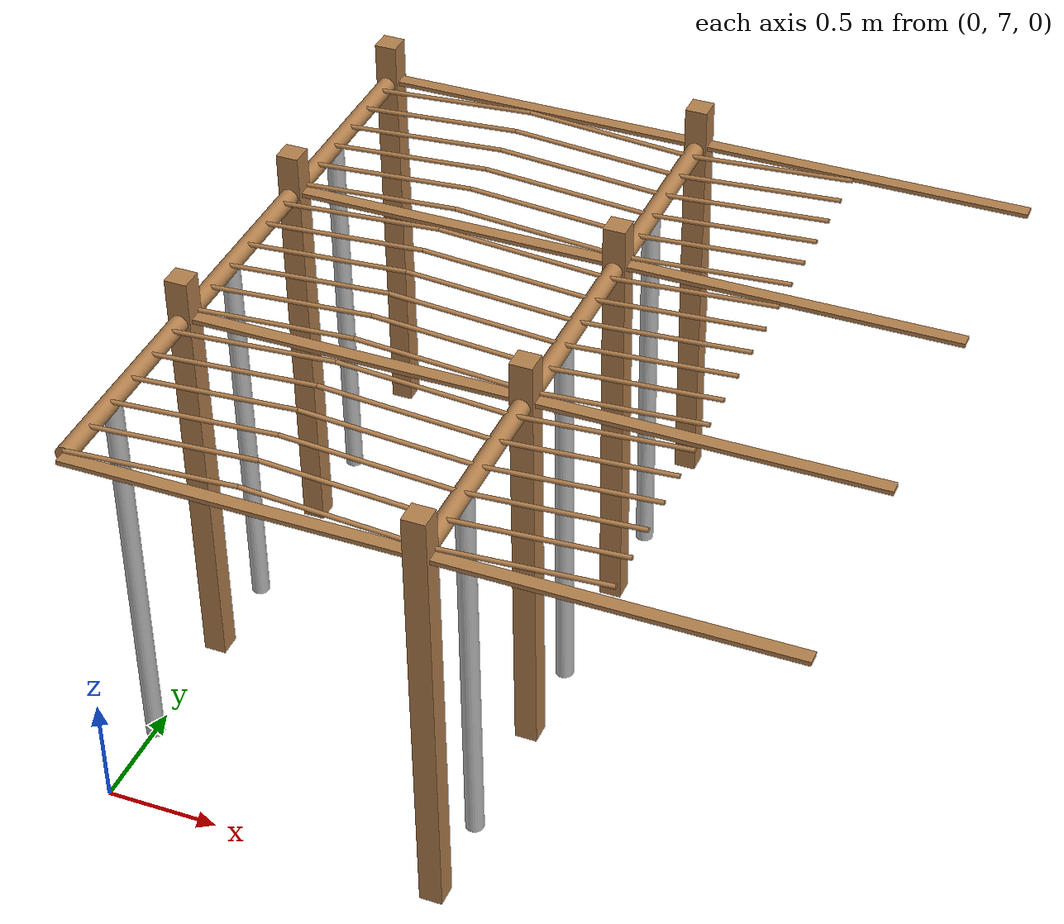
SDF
<sdf version="1.4">
 <model name="pergola">
  <include><name>post_8</name><pose>0.0 8.0 0 0 0 0</pose><uri>model://post</uri></include>
  <include><name>post_9</name><pose>0.0 9.0 0 0 0 0</pose><uri>model://post</uri></include>
  <include><name>post_10</name><pose>0.0 10.0 0 0 0 0</pose><uri>model://post</uri></include>
  <include><name>post_18</name><pose>1.5 7.0 0 0 0 0</pose><uri>model://post</uri></include>
  <include><name>post_19</name><pose>1.5 8.0 0 0 0 0</pose><uri>model://post</uri></include>
  <include><name>post_20</name><pose>1.5 9.0 0 0 0 0</pose><uri>model://post</uri></include>
  <include><name>post_21</name><pose>1.5 10.0 0 0 0 0</pose><uri>model://post</uri></include>
  <link name="beam_7">
   <pose>0.75 7.0 1.81 0 0 0</pose>
   <collision name="collision"><geometry><box><size>1.5 0.06 0.02</size></box></geometry></collision>
   <visual name="visual">
    <geometry><box><size>1.5 0.06 0.02</size></box></geometry>
    <material><script><name>Gazebo/Wood</name></script></material>
   </visual>
   <inertial>
    <mass>5</mass>
    <inertia>
     <ixx>0.0016666666666666668</ixx>
     <ixy>0.0</ixy>
     <ixz>0.0</ixz>
     <iyy>0.9390000000000001</iyy>
     <iyz>0.0</iyz>
     <izz>0.9376666666666665</izz>
    </inertia>
   </inertial>
  </link>
  <link name="beam_8">
   <pose>0.75 8.0 1.81 0 0 0</pose>
   <collision name="collision"><geometry><box><size>1.5 0.06 0.02</size></box></geometry></collision>
   <visual name="visual">
    <geometry><box><size>1.5 0.06 0.02</size></box></geometry>
    <material><script><name>Gazebo/Wood</name></script></material>
   </visual>
   <inertial>
    <mass>5</mass>
    <inertia>
     <ixx>0.0016666666666666668</ixx>
     <ixy>0.0</ixy>
     <ixz>0.0</ixz>
     <iyy>0.9390000000000001</iyy>
     <iyz>0.0</iyz>
     <izz>0.9376666666666665</izz>
    </inertia>
   </inertial>
  </link>
  <link name="beam_9">
   <pose>0.75 9.0 1.81 0 0 0</pose>
   <collision name="collision"><geometry><box><size>1.5 0.06 0.02</size></box></geometry></collision>
   <visual name="visual">
    <geometry><box><size>1.5 0.06 0.02</size></box></geometry>
    <material><script><name>Gazebo/Wood</name></script></material>
   </visual>
   <inertial>
    <mass>5</mass>
    <inertia>
     <ixx>0.0016666666666666668</ixx>
     <ixy>0.0</ixy>
     <ixz>0.0</ixz>
     <iyy>0.9390000000000001</iyy>
     <iyz>0.0</iyz>
     <izz>0.9376666666666665</izz>
    </inertia>
   </inertial>
  </link>
  <link name="beam_10">
   <pose>0.75 10.0 1.81 0 0 0</pose>
   <collision name="collision"><geometry><box><size>1.5 0.06 0.02</size></box></geometry></collision>
   <visual name="visual">
    <geometry><box><size>1.5 0.06 0.02</size></box></geometry>
    <material><script><name>Gazebo/Wood</name></script></material>
   </visual>
   <inertial>
    <mass>5</mass>
    <inertia>
     <ixx>0.0016666666666666668</ixx>
     <ixy>0.0</ixy>
     <ixz>0.0</ixz>
     <iyy>0.9390000000000001</iyy>
     <iyz>0.0</iyz>
     <izz>0.9376666666666665</izz>
    </inertia>
   </inertial>
  </link>
  <link name="beam_18">
   <pose>2.25 7.0 1.81 0 0 0</pose>
   <collision name="collision"><geometry><box><size>1.5 0.06 0.02</size></box></geometry></collision>
   <visual name="visual">
    <geometry><box><size>1.5 0.06 0.02</size></box></geometry>
    <material><script><name>Gazebo/Wood</name></script></material>
   </visual>
   <inertial>
    <mass>5</mass>
    <inertia>
     <ixx>0.0016666666666666668</ixx>
     <ixy>0.0</ixy>
     <ixz>0.0</ixz>
     <iyy>0.9390000000000001</iyy>
     <iyz>0.0</iyz>
     <izz>0.9376666666666665</izz>
    </inertia>
   </inertial>
  </link>
  <link name="beam_19">
   <pose>2.25 8.0 1.81 0 0 0</pose>
   <collision name="collision"><geometry><box><size>1.5 0.06 0.02</size></box></geometry></collision>
   <visual name="visual">
    <geometry><box><size>1.5 0.06 0.02</size></box></geometry>
    <material><script><name>Gazebo/Wood</name></script></material>
   </visual>
   <inertial>
    <mass>5</mass>
    <inertia>
     <ixx>0.0016666666666666668</ixx>
     <ixy>0.0</ixy>
     <ixz>0.0</ixz>
     <iyy>0.9390000000000001</iyy>
     <iyz>0.0</iyz>
     <izz>0.9376666666666665</izz>
    </inertia>
   </inertial>
  </link>
  <link name="beam_20">
   <pose>2.25 9.0 1.81 0 0 0</pose>
   <collision name="collision"><geometry><box><size>1.5 0.06 0.02</size></box></geometry></collision>
   <visual name="visual">
    <geometry><box><size>1.5 0.06 0.02</size></box></geometry>
    <material><script><name>Gazebo/Wood</name></script></material>
   </visual>
   <inertial>
    <mass>5</mass>
    <inertia>
     <ixx>0.0016666666666666668</ixx>
     <ixy>0.0</ixy>
     <ixz>0.0</ixz>
     <iyy>0.9390000000000001</iyy>
     <iyz>0.0</iyz>
     <izz>0.9376666666666665</izz>
    </inertia>
   </inertial>
  </link>
  <link name="beam_21">
   <pose>2.25 10.0 1.81 0 0 0</pose>
   <collision name="collision"><geometry><box><size>1.5 0.06 0.02</size></box></geometry></collision>
   <visual name="visual">
    <geometry><box><size>1.5 0.06 0.02</size></box></geometry>
    <material><script><name>Gazebo/Wood</name></script></material>
   </visual>
   <inertial>
    <mass>5</mass>
    <inertia>
     <ixx>0.0016666666666666668</ixx>
     <ixy>0.0</ixy>
     <ixz>0.0</ixz>
     <iyy>0.9390000000000001</iyy>
     <iyz>0.0</iyz>
     <izz>0.9376666666666665</izz>
    </inertia>
   </inertial>
  </link>
  <include><name>tree_7</name><pose>0.0 7.4 0 0 0 0</pose><uri>model://tree_trunk</uri></include>
  <include><name>tree_8</name><pose>0.0 8.4 0 0 0 0</pose><uri>model://tree_trunk</uri></include>
  <include><name>tree_9</name><pose>0.0 9.4 0 0 0 0</pose><uri>model://tree_trunk</uri></include>
  <include><name>tree_17</name><pose>1.5 7.4 0 0 0 0</pose><uri>model://tree_trunk</uri></include>
  <include><name>tree_18</name><pose>1.5 8.4 0 0 0 0</pose><uri>model://tree_trunk</uri></include>
  <include><name>tree_19</name><pose>1.5 9.4 0 0 0 0</pose><uri>model://tree_trunk</uri></include>
  <link name="baseBranch_7">
   <pose>0.0 7.5 1.8 1.5707963267948966 0 0</pose>
   <collision name="collision">
    <geometry><cylinder><radius>0.04</radius><length>0.94</length></cylinder></geometry>
   </collision>
   <visual name="visual">
    <geometry><cylinder><radius>0.04</radius><length>0.94</length></cylinder></geometry>
    <material><script><name>Gazebo/WoodFloor</name></script></material>
   </visual>
   <inertial>
    <mass>10</mass>
    <inertia>
     <ixx>0.7403333333333334</ixx>
     <ixy>0.0</ixy>
     <ixz>0.0</ixz>
     <iyy>0.7403333333333334</iyy>
     <iyz>0.0</iyz>
     <izz>0.008</izz>
    </inertia>
   </inertial>
  </link>
  <link name="baseBranch_8">
   <pose>0.0 8.5 1.8 1.5707963267948966 0 0</pose>
   <collision name="collision">
    <geometry><cylinder><radius>0.04</radius><length>0.94</length></cylinder></geometry>
   </collision>
   <visual name="visual">
    <geometry><cylinder><radius>0.04</radius><length>0.94</length></cylinder></geometry>
    <material><script><name>Gazebo/WoodFloor</name></script></material>
   </visual>
   <inertial>
    <mass>10</mass>
    <inertia>
     <ixx>0.7403333333333334</ixx>
     <ixy>0.0</ixy>
     <ixz>0.0</ixz>
     <iyy>0.7403333333333334</iyy>
     <iyz>0.0</iyz>
     <izz>0.008</izz>
    </inertia>
   </inertial>
  </link>
  <link name="baseBranch_9">
   <pose>0.0 9.5 1.8 1.5707963267948966 0 0</pose>
   <collision name="collision">
    <geometry><cylinder><radius>0.04</radius><length>0.94</length></cylinder></geometry>
   </collision>
   <visual name="visual">
    <geometry><cylinder><radius>0.04</radius><length>0.94</length></cylinder></geometry>
    <material><script><name>Gazebo/WoodFloor</name></script></material>
   </visual>
   <inertial>
    <mass>10</mass>
    <inertia>
     <ixx>0.7403333333333334</ixx>
     <ixy>0.0</ixy>
     <ixz>0.0</ixz>
     <iyy>0.7403333333333334</iyy>
     <iyz>0.0</iyz>
     <izz>0.008</izz>
    </inertia>
   </inertial>
  </link>
  <link name="baseBranch_17">
   <pose>1.5 7.5 1.8 1.5707963267948966 0 0</pose>
   <collision name="collision">
    <geometry><cylinder><radius>0.04</radius><length>0.94</length></cylinder></geometry>
   </collision>
   <visual name="visual">
    <geometry><cylinder><radius>0.04</radius><length>0.94</length></cylinder></geometry>
    <material><script><name>Gazebo/WoodFloor</name></script></material>
   </visual>
   <inertial>
    <mass>10</mass>
    <inertia>
     <ixx>0.7403333333333334</ixx>
     <ixy>0.0</ixy>
     <ixz>0.0</ixz>
     <iyy>0.7403333333333334</iyy>
     <iyz>0.0</iyz>
     <izz>0.008</izz>
    </inertia>
   </inertial>
  </link>
  <link name="baseBranch_18">
   <pose>1.5 8.5 1.8 1.5707963267948966 0 0</pose>
   <collision name="collision">
    <geometry><cylinder><radius>0.04</radius><length>0.94</length></cylinder></geometry>
   </collision>
   <visual name="visual">
    <geometry><cylinder><radius>0.04</radius><length>0.94</length></cylinder></geometry>
    <material><script><name>Gazebo/WoodFloor</name></script></material>
   </visual>
   <inertial>
    <mass>10</mass>
    <inertia>
     <ixx>0.7403333333333334</ixx>
     <ixy>0.0</ixy>
     <ixz>0.0</ixz>
     <iyy>0.7403333333333334</iyy>
     <iyz>0.0</iyz>
     <izz>0.008</izz>
    </inertia>
   </inertial>
  </link>
  <link name="baseBranch_19">
   <pose>1.5 9.5 1.8 1.5707963267948966 0 0</pose>
   <collision name="collision">
    <geometry><cylinder><radius>0.04</radius><length>0.94</length></cylinder></geometry>
   </collision>
   <visual name="visual">
    <geometry><cylinder><radius>0.04</radius><length>0.94</length></cylinder></geometry>
    <material><script><name>Gazebo/WoodFloor</name></script></material>
   </visual>
   <inertial>
    <mass>10</mass>
    <inertia>
     <ixx>0.7403333333333334</ixx>
     <ixy>0.0</ixy>
     <ixz>0.0</ixz>
     <iyy>0.7403333333333334</iyy>
     <iyz>0.0</iyz>
     <izz>0.008</izz>
    </inertia>
   </inertial>
  </link>
  <link name="vine_84">
   <pose>0.375 7.03 1.85 0 1.5042281630190728 0</pose>
   <collision name="collision">
    <geometry><cylinder><radius>0.01</radius><length>0.7516648189186453</length></cylinder></geometry>
   </collision>
   <visual name="visual">
    <geometry><cylinder><radius>0.01</radius><length>0.7516648189186453</length></cylinder></geometry>
    <material><script><name>Gazebo/WoodFloor</name></script></material>
   </visual>
   <inertial>
    <mass>5</mass>
    <inertia>
     <ixx>0.23554166666666657</ixx>
     <ixy>0.0</ixy>
     <ixz>0.0</ixz>
     <iyy>0.23554166666666657</iyy>
     <iyz>0.0</iyz>
     <izz>0.00025</izz>
    </inertia>
   </inertial>
  </link>
  <link name="vine_85">
   <pose>1.125 7.03 1.85 0 -1.5042281630190728 0</pose>
   <collision name="collision">
    <geometry><cylinder><radius>0.01</radius><length>0.7516648189186453</length></cylinder></geometry>
   </collision>
   <visual name="visual">
    <geometry><cylinder><radius>0.01</radius><length>0.7516648189186453</length></cylinder></geometry>
    <material><script><name>Gazebo/WoodFloor</name></script></material>
   </visual>
   <inertial>
    <mass>5</mass>
    <inertia>
     <ixx>0.23554166666666657</ixx>
     <ixy>0.0</ixy>
     <ixz>0.0</ixz>
     <iyy>0.23554166666666657</iyy>
     <iyz>0.0</iyz>
     <izz>0.00025</izz>
    </inertia>
   </inertial>
  </link>
  <link name="vine_86">
   <pose>0.375 7.196666666666666 1.85 0 1.5042281630190728 0</pose>
   <collision name="collision">
    <geometry><cylinder><radius>0.01</radius><length>0.7516648189186453</length></cylinder></geometry>
   </collision>
   <visual name="visual">
    <geometry><cylinder><radius>0.01</radius><length>0.7516648189186453</length></cylinder></geometry>
    <material><script><name>Gazebo/WoodFloor</name></script></material>
   </visual>
   <inertial>
    <mass>5</mass>
    <inertia>
     <ixx>0.23554166666666657</ixx>
     <ixy>0.0</ixy>
     <ixz>0.0</ixz>
     <iyy>0.23554166666666657</iyy>
     <iyz>0.0</iyz>
     <izz>0.00025</izz>
    </inertia>
   </inertial>
  </link>
  <link name="vine_87">
   <pose>1.125 7.196666666666666 1.85 0 -1.5042281630190728 0</pose>
   <collision name="collision">
    <geometry><cylinder><radius>0.01</radius><length>0.7516648189186453</length></cylinder></geometry>
   </collision>
   <visual name="visual">
    <geometry><cylinder><radius>0.01</radius><length>0.7516648189186453</length></cylinder></geometry>
    <material><script><name>Gazebo/WoodFloor</name></script></material>
   </visual>
   <inertial>
    <mass>5</mass>
    <inertia>
     <ixx>0.23554166666666657</ixx>
     <ixy>0.0</ixy>
     <ixz>0.0</ixz>
     <iyy>0.23554166666666657</iyy>
     <iyz>0.0</iyz>
     <izz>0.00025</izz>
    </inertia>
   </inertial>
  </link>
  <link name="vine_88">
   <pose>0.375 7.363333333333333 1.85 0 1.5042281630190728 0</pose>
   <collision name="collision">
    <geometry><cylinder><radius>0.01</radius><length>0.7516648189186453</length></cylinder></geometry>
   </collision>
   <visual name="visual">
    <geometry><cylinder><radius>0.01</radius><length>0.7516648189186453</length></cylinder></geometry>
    <material><script><name>Gazebo/WoodFloor</name></script></material>
   </visual>
   <inertial>
    <mass>5</mass>
    <inertia>
     <ixx>0.23554166666666657</ixx>
     <ixy>0.0</ixy>
     <ixz>0.0</ixz>
     <iyy>0.23554166666666657</iyy>
     <iyz>0.0</iyz>
     <izz>0.00025</izz>
    </inertia>
   </inertial>
  </link>
  <link name="vine_89">
   <pose>1.125 7.363333333333333 1.85 0 -1.5042281630190728 0</pose>
   <collision name="collision">
    <geometry><cylinder><radius>0.01</radius><length>0.7516648189186453</length></cylinder></geometry>
   </collision>
   <visual name="visual">
    <geometry><cylinder><radius>0.01</radius><length>0.7516648189186453</length></cylinder></geometry>
    <material><script><name>Gazebo/WoodFloor</name></script></material>
   </visual>
   <inertial>
    <mass>5</mass>
    <inertia>
     <ixx>0.23554166666666657</ixx>
     <ixy>0.0</ixy>
     <ixz>0.0</ixz>
     <iyy>0.23554166666666657</iyy>
     <iyz>0.0</iyz>
     <izz>0.00025</izz>
    </inertia>
   </inertial>
  </link>
  <link name="vine_90">
   <pose>0.375 7.53 1.85 0 1.5042281630190728 0</pose>
   <collision name="collision">
    <geometry><cylinder><radius>0.01</radius><length>0.7516648189186453</length></cylinder></geometry>
   </collision>
   <visual name="visual">
    <geometry><cylinder><radius>0.01</radius><length>0.7516648189186453</length></cylinder></geometry>
    <material><script><name>Gazebo/WoodFloor</name></script></material>
   </visual>
   <inertial>
    <mass>5</mass>
    <inertia>
     <ixx>0.23554166666666657</ixx>
     <ixy>0.0</ixy>
     <ixz>0.0</ixz>
     <iyy>0.23554166666666657</iyy>
     <iyz>0.0</iyz>
     <izz>0.00025</izz>
    </inertia>
   </inertial>
  </link>
  <link name="vine_91">
   <pose>1.125 7.53 1.85 0 -1.5042281630190728 0</pose>
   <collision name="collision">
    <geometry><cylinder><radius>0.01</radius><length>0.7516648189186453</length></cylinder></geometry>
   </collision>
   <visual name="visual">
    <geometry><cylinder><radius>0.01</radius><length>0.7516648189186453</length></cylinder></geometry>
    <material><script><name>Gazebo/WoodFloor</name></script></material>
   </visual>
   <inertial>
    <mass>5</mass>
    <inertia>
     <ixx>0.23554166666666657</ixx>
     <ixy>0.0</ixy>
     <ixz>0.0</ixz>
     <iyy>0.23554166666666657</iyy>
     <iyz>0.0</iyz>
     <izz>0.00025</izz>
    </inertia>
   </inertial>
  </link>
  <link name="vine_92">
   <pose>0.375 7.696666666666666 1.85 0 1.5042281630190728 0</pose>
   <collision name="collision">
    <geometry><cylinder><radius>0.01</radius><length>0.7516648189186453</length></cylinder></geometry>
   </collision>
   <visual name="visual">
    <geometry><cylinder><radius>0.01</radius><length>0.7516648189186453</length></cylinder></geometry>
    <material><script><name>Gazebo/WoodFloor</name></script></material>
   </visual>
   <inertial>
    <mass>5</mass>
    <inertia>
     <ixx>0.23554166666666657</ixx>
     <ixy>0.0</ixy>
     <ixz>0.0</ixz>
     <iyy>0.23554166666666657</iyy>
     <iyz>0.0</iyz>
     <izz>0.00025</izz>
    </inertia>
   </inertial>
  </link>
  <link name="vine_93">
   <pose>1.125 7.696666666666666 1.85 0 -1.5042281630190728 0</pose>
   <collision name="collision">
    <geometry><cylinder><radius>0.01</radius><length>0.7516648189186453</length></cylinder></geometry>
   </collision>
   <visual name="visual">
    <geometry><cylinder><radius>0.01</radius><length>0.7516648189186453</length></cylinder></geometry>
    <material><script><name>Gazebo/WoodFloor</name></script></material>
   </visual>
   <inertial>
    <mass>5</mass>
    <inertia>
     <ixx>0.23554166666666657</ixx>
     <ixy>0.0</ixy>
     <ixz>0.0</ixz>
     <iyy>0.23554166666666657</iyy>
     <iyz>0.0</iyz>
     <izz>0.00025</izz>
    </inertia>
   </inertial>
  </link>
  <link name="vine_94">
   <pose>0.375 7.863333333333333 1.85 0 1.5042281630190728 0</pose>
   <collision name="collision">
    <geometry><cylinder><radius>0.01</radius><length>0.7516648189186453</length></cylinder></geometry>
   </collision>
   <visual name="visual">
    <geometry><cylinder><radius>0.01</radius><length>0.7516648189186453</length></cylinder></geometry>
    <material><script><name>Gazebo/WoodFloor</name></script></material>
   </visual>
   <inertial>
    <mass>5</mass>
    <inertia>
     <ixx>0.23554166666666657</ixx>
     <ixy>0.0</ixy>
     <ixz>0.0</ixz>
     <iyy>0.23554166666666657</iyy>
     <iyz>0.0</iyz>
     <izz>0.00025</izz>
    </inertia>
   </inertial>
  </link>
  <link name="vine_95">
   <pose>1.125 7.863333333333333 1.85 0 -1.5042281630190728 0</pose>
   <collision name="collision">
    <geometry><cylinder><radius>0.01</radius><length>0.7516648189186453</length></cylinder></geometry>
   </collision>
   <visual name="visual">
    <geometry><cylinder><radius>0.01</radius><length>0.7516648189186453</length></cylinder></geometry>
    <material><script><name>Gazebo/WoodFloor</name></script></material>
   </visual>
   <inertial>
    <mass>5</mass>
    <inertia>
     <ixx>0.23554166666666657</ixx>
     <ixy>0.0</ixy>
     <ixz>0.0</ixz>
     <iyy>0.23554166666666657</iyy>
     <iyz>0.0</iyz>
     <izz>0.00025</izz>
    </inertia>
   </inertial>
  </link>
  <link name="vine_96">
   <pose>0.375 8.03 1.85 0 1.5042281630190728 0</pose>
   <collision name="collision">
    <geometry><cylinder><radius>0.01</radius><length>0.7516648189186453</length></cylinder></geometry>
   </collision>
   <visual name="visual">
    <geometry><cylinder><radius>0.01</radius><length>0.7516648189186453</length></cylinder></geometry>
    <material><script><name>Gazebo/WoodFloor</name></script></material>
   </visual>
   <inertial>
    <mass>5</mass>
    <inertia>
     <ixx>0.23554166666666657</ixx>
     <ixy>0.0</ixy>
     <ixz>0.0</ixz>
     <iyy>0.23554166666666657</iyy>
     <iyz>0.0</iyz>
     <izz>0.00025</izz>
    </inertia>
   </inertial>
  </link>
  <link name="vine_97">
   <pose>1.125 8.03 1.85 0 -1.5042281630190728 0</pose>
   <collision name="collision">
    <geometry><cylinder><radius>0.01</radius><length>0.7516648189186453</length></cylinder></geometry>
   </collision>
   <visual name="visual">
    <geometry><cylinder><radius>0.01</radius><length>0.7516648189186453</length></cylinder></geometry>
    <material><script><name>Gazebo/WoodFloor</name></script></material>
   </visual>
   <inertial>
    <mass>5</mass>
    <inertia>
     <ixx>0.23554166666666657</ixx>
     <ixy>0.0</ixy>
     <ixz>0.0</ixz>
     <iyy>0.23554166666666657</iyy>
     <iyz>0.0</iyz>
     <izz>0.00025</izz>
    </inertia>
   </inertial>
  </link>
  <link name="vine_98">
   <pose>0.375 8.196666666666665 1.85 0 1.5042281630190728 0</pose>
   <collision name="collision">
    <geometry><cylinder><radius>0.01</radius><length>0.7516648189186453</length></cylinder></geometry>
   </collision>
   <visual name="visual">
    <geometry><cylinder><radius>0.01</radius><length>0.7516648189186453</length></cylinder></geometry>
    <material><script><name>Gazebo/WoodFloor</name></script></material>
   </visual>
   <inertial>
    <mass>5</mass>
    <inertia>
     <ixx>0.23554166666666657</ixx>
     <ixy>0.0</ixy>
     <ixz>0.0</ixz>
     <iyy>0.23554166666666657</iyy>
     <iyz>0.0</iyz>
     <izz>0.00025</izz>
    </inertia>
   </inertial>
  </link>
  <link name="vine_99">
   <pose>1.125 8.196666666666665 1.85 0 -1.5042281630190728 0</pose>
   <collision name="collision">
    <geometry><cylinder><radius>0.01</radius><length>0.7516648189186453</length></cylinder></geometry>
   </collision>
   <visual name="visual">
    <geometry><cylinder><radius>0.01</radius><length>0.7516648189186453</length></cylinder></geometry>
    <material><script><name>Gazebo/WoodFloor</name></script></material>
   </visual>
   <inertial>
    <mass>5</mass>
    <inertia>
     <ixx>0.23554166666666657</ixx>
     <ixy>0.0</ixy>
     <ixz>0.0</ixz>
     <iyy>0.23554166666666657</iyy>
     <iyz>0.0</iyz>
     <izz>0.00025</izz>
    </inertia>
   </inertial>
  </link>
  <link name="vine_100">
   <pose>0.375 8.363333333333332 1.85 0 1.5042281630190728 0</pose>
   <collision name="collision">
    <geometry><cylinder><radius>0.01</radius><length>0.7516648189186453</length></cylinder></geometry>
   </collision>
   <visual name="visual">
    <geometry><cylinder><radius>0.01</radius><length>0.7516648189186453</length></cylinder></geometry>
    <material><script><name>Gazebo/WoodFloor</name></script></material>
   </visual>
   <inertial>
    <mass>5</mass>
    <inertia>
     <ixx>0.23554166666666657</ixx>
     <ixy>0.0</ixy>
     <ixz>0.0</ixz>
     <iyy>0.23554166666666657</iyy>
     <iyz>0.0</iyz>
     <izz>0.00025</izz>
    </inertia>
   </inertial>
  </link>
  <link name="vine_101">
   <pose>1.125 8.363333333333332 1.85 0 -1.5042281630190728 0</pose>
   <collision name="collision">
    <geometry><cylinder><radius>0.01</radius><length>0.7516648189186453</length></cylinder></geometry>
   </collision>
   <visual name="visual">
    <geometry><cylinder><radius>0.01</radius><length>0.7516648189186453</length></cylinder></geometry>
    <material><script><name>Gazebo/WoodFloor</name></script></material>
   </visual>
   <inertial>
    <mass>5</mass>
    <inertia>
     <ixx>0.23554166666666657</ixx>
     <ixy>0.0</ixy>
     <ixz>0.0</ixz>
     <iyy>0.23554166666666657</iyy>
     <iyz>0.0</iyz>
     <izz>0.00025</izz>
    </inertia>
   </inertial>
  </link>
  <link name="vine_102">
   <pose>0.375 8.53 1.85 0 1.5042281630190728 0</pose>
   <collision name="collision">
    <geometry><cylinder><radius>0.01</radius><length>0.7516648189186453</length></cylinder></geometry>
   </collision>
   <visual name="visual">
    <geometry><cylinder><radius>0.01</radius><length>0.7516648189186453</length></cylinder></geometry>
    <material><script><name>Gazebo/WoodFloor</name></script></material>
   </visual>
   <inertial>
    <mass>5</mass>
    <inertia>
     <ixx>0.23554166666666657</ixx>
     <ixy>0.0</ixy>
     <ixz>0.0</ixz>
     <iyy>0.23554166666666657</iyy>
     <iyz>0.0</iyz>
     <izz>0.00025</izz>
    </inertia>
   </inertial>
  </link>
  <link name="vine_103">
   <pose>1.125 8.53 1.85 0 -1.5042281630190728 0</pose>
   <collision name="collision">
    <geometry><cylinder><radius>0.01</radius><length>0.7516648189186453</length></cylinder></geometry>
   </collision>
   <visual name="visual">
    <geometry><cylinder><radius>0.01</radius><length>0.7516648189186453</length></cylinder></geometry>
    <material><script><name>Gazebo/WoodFloor</name></script></material>
   </visual>
   <inertial>
    <mass>5</mass>
    <inertia>
     <ixx>0.23554166666666657</ixx>
     <ixy>0.0</ixy>
     <ixz>0.0</ixz>
     <iyy>0.23554166666666657</iyy>
     <iyz>0.0</iyz>
     <izz>0.00025</izz>
    </inertia>
   </inertial>
  </link>
  <link name="vine_104">
   <pose>0.375 8.696666666666665 1.85 0 1.5042281630190728 0</pose>
   <collision name="collision">
    <geometry><cylinder><radius>0.01</radius><length>0.7516648189186453</length></cylinder></geometry>
   </collision>
   <visual name="visual">
    <geometry><cylinder><radius>0.01</radius><length>0.7516648189186453</length></cylinder></geometry>
    <material><script><name>Gazebo/WoodFloor</name></script></material>
   </visual>
   <inertial>
    <mass>5</mass>
    <inertia>
     <ixx>0.23554166666666657</ixx>
     <ixy>0.0</ixy>
     <ixz>0.0</ixz>
     <iyy>0.23554166666666657</iyy>
     <iyz>0.0</iyz>
     <izz>0.00025</izz>
    </inertia>
   </inertial>
  </link>
  <link name="vine_105">
   <pose>1.125 8.696666666666665 1.85 0 -1.5042281630190728 0</pose>
   <collision name="collision">
    <geometry><cylinder><radius>0.01</radius><length>0.7516648189186453</length></cylinder></geometry>
   </collision>
   <visual name="visual">
    <geometry><cylinder><radius>0.01</radius><length>0.7516648189186453</length></cylinder></geometry>
    <material><script><name>Gazebo/WoodFloor</name></script></material>
   </visual>
   <inertial>
    <mass>5</mass>
    <inertia>
     <ixx>0.23554166666666657</ixx>
     <ixy>0.0</ixy>
     <ixz>0.0</ixz>
     <iyy>0.23554166666666657</iyy>
     <iyz>0.0</iyz>
     <izz>0.00025</izz>
    </inertia>
   </inertial>
  </link>
  <link name="vine_106">
   <pose>0.375 8.863333333333332 1.85 0 1.5042281630190728 0</pose>
   <collision name="collision">
    <geometry><cylinder><radius>0.01</radius><length>0.7516648189186453</length></cylinder></geometry>
   </collision>
   <visual name="visual">
    <geometry><cylinder><radius>0.01</radius><length>0.7516648189186453</length></cylinder></geometry>
    <material><script><name>Gazebo/WoodFloor</name></script></material>
   </visual>
   <inertial>
    <mass>5</mass>
    <inertia>
     <ixx>0.23554166666666657</ixx>
     <ixy>0.0</ixy>
     <ixz>0.0</ixz>
     <iyy>0.23554166666666657</iyy>
     <iyz>0.0</iyz>
     <izz>0.00025</izz>
    </inertia>
   </inertial>
  </link>
  <link name="vine_107">
   <pose>1.125 8.863333333333332 1.85 0 -1.5042281630190728 0</pose>
   <collision name="collision">
    <geometry><cylinder><radius>0.01</radius><length>0.7516648189186453</length></cylinder></geometry>
   </collision>
   <visual name="visual">
    <geometry><cylinder><radius>0.01</radius><length>0.7516648189186453</length></cylinder></geometry>
    <material><script><name>Gazebo/WoodFloor</name></script></material>
   </visual>
   <inertial>
    <mass>5</mass>
    <inertia>
     <ixx>0.23554166666666657</ixx>
     <ixy>0.0</ixy>
     <ixz>0.0</ixz>
     <iyy>0.23554166666666657</iyy>
     <iyz>0.0</iyz>
     <izz>0.00025</izz>
    </inertia>
   </inertial>
  </link>
  <link name="vine_108">
   <pose>0.375 9.03 1.85 0 1.5042281630190728 0</pose>
   <collision name="collision">
    <geometry><cylinder><radius>0.01</radius><length>0.7516648189186453</length></cylinder></geometry>
   </collision>
   <visual name="visual">
    <geometry><cylinder><radius>0.01</radius><length>0.7516648189186453</length></cylinder></geometry>
    <material><script><name>Gazebo/WoodFloor</name></script></material>
   </visual>
   <inertial>
    <mass>5</mass>
    <inertia>
     <ixx>0.23554166666666657</ixx>
     <ixy>0.0</ixy>
     <ixz>0.0</ixz>
     <iyy>0.23554166666666657</iyy>
     <iyz>0.0</iyz>
     <izz>0.00025</izz>
    </inertia>
   </inertial>
  </link>
  <link name="vine_109">
   <pose>1.125 9.03 1.85 0 -1.5042281630190728 0</pose>
   <collision name="collision">
    <geometry><cylinder><radius>0.01</radius><length>0.7516648189186453</length></cylinder></geometry>
   </collision>
   <visual name="visual">
    <geometry><cylinder><radius>0.01</radius><length>0.7516648189186453</length></cylinder></geometry>
    <material><script><name>Gazebo/WoodFloor</name></script></material>
   </visual>
   <inertial>
    <mass>5</mass>
    <inertia>
     <ixx>0.23554166666666657</ixx>
     <ixy>0.0</ixy>
     <ixz>0.0</ixz>
     <iyy>0.23554166666666657</iyy>
     <iyz>0.0</iyz>
     <izz>0.00025</izz>
    </inertia>
   </inertial>
  </link>
  <link name="vine_110">
   <pose>0.375 9.196666666666665 1.85 0 1.5042281630190728 0</pose>
   <collision name="collision">
    <geometry><cylinder><radius>0.01</radius><length>0.7516648189186453</length></cylinder></geometry>
   </collision>
   <visual name="visual">
    <geometry><cylinder><radius>0.01</radius><length>0.7516648189186453</length></cylinder></geometry>
    <material><script><name>Gazebo/WoodFloor</name></script></material>
   </visual>
   <inertial>
    <mass>5</mass>
    <inertia>
     <ixx>0.23554166666666657</ixx>
     <ixy>0.0</ixy>
     <ixz>0.0</ixz>
     <iyy>0.23554166666666657</iyy>
     <iyz>0.0</iyz>
     <izz>0.00025</izz>
    </inertia>
   </inertial>
  </link>
  <link name="vine_111">
   <pose>1.125 9.196666666666665 1.85 0 -1.5042281630190728 0</pose>
   <collision name="collision">
    <geometry><cylinder><radius>0.01</radius><length>0.7516648189186453</length></cylinder></geometry>
   </collision>
   <visual name="visual">
    <geometry><cylinder><radius>0.01</radius><length>0.7516648189186453</length></cylinder></geometry>
    <material><script><name>Gazebo/WoodFloor</name></script></material>
   </visual>
   <inertial>
    <mass>5</mass>
    <inertia>
     <ixx>0.23554166666666657</ixx>
     <ixy>0.0</ixy>
     <ixz>0.0</ixz>
     <iyy>0.23554166666666657</iyy>
     <iyz>0.0</iyz>
     <izz>0.00025</izz>
    </inertia>
   </inertial>
  </link>
  <link name="vine_112">
   <pose>0.375 9.363333333333332 1.85 0 1.5042281630190728 0</pose>
   <collision name="collision">
    <geometry><cylinder><radius>0.01</radius><length>0.7516648189186453</length></cylinder></geometry>
   </collision>
   <visual name="visual">
    <geometry><cylinder><radius>0.01</radius><length>0.7516648189186453</length></cylinder></geometry>
    <material><script><name>Gazebo/WoodFloor</name></script></material>
   </visual>
   <inertial>
    <mass>5</mass>
    <inertia>
     <ixx>0.23554166666666657</ixx>
     <ixy>0.0</ixy>
     <ixz>0.0</ixz>
     <iyy>0.23554166666666657</iyy>
     <iyz>0.0</iyz>
     <izz>0.00025</izz>
    </inertia>
   </inertial>
  </link>
  <link name="vine_113">
   <pose>1.125 9.363333333333332 1.85 0 -1.5042281630190728 0</pose>
   <collision name="collision">
    <geometry><cylinder><radius>0.01</radius><length>0.7516648189186453</length></cylinder></geometry>
   </collision>
   <visual name="visual">
    <geometry><cylinder><radius>0.01</radius><length>0.7516648189186453</length></cylinder></geometry>
    <material><script><name>Gazebo/WoodFloor</name></script></material>
   </visual>
   <inertial>
    <mass>5</mass>
    <inertia>
     <ixx>0.23554166666666657</ixx>
     <ixy>0.0</ixy>
     <ixz>0.0</ixz>
     <iyy>0.23554166666666657</iyy>
     <iyz>0.0</iyz>
     <izz>0.00025</izz>
    </inertia>
   </inertial>
  </link>
  <link name="vine_114">
   <pose>0.375 9.53 1.85 0 1.5042281630190728 0</pose>
   <collision name="collision">
    <geometry><cylinder><radius>0.01</radius><length>0.7516648189186453</length></cylinder></geometry>
   </collision>
   <visual name="visual">
    <geometry><cylinder><radius>0.01</radius><length>0.7516648189186453</length></cylinder></geometry>
    <material><script><name>Gazebo/WoodFloor</name></script></material>
   </visual>
   <inertial>
    <mass>5</mass>
    <inertia>
     <ixx>0.23554166666666657</ixx>
     <ixy>0.0</ixy>
     <ixz>0.0</ixz>
     <iyy>0.23554166666666657</iyy>
     <iyz>0.0</iyz>
     <izz>0.00025</izz>
    </inertia>
   </inertial>
  </link>
  <link name="vine_115">
   <pose>1.125 9.53 1.85 0 -1.5042281630190728 0</pose>
   <collision name="collision">
    <geometry><cylinder><radius>0.01</radius><length>0.7516648189186453</length></cylinder></geometry>
   </collision>
   <visual name="visual">
    <geometry><cylinder><radius>0.01</radius><length>0.7516648189186453</length></cylinder></geometry>
    <material><script><name>Gazebo/WoodFloor</name></script></material>
   </visual>
   <inertial>
    <mass>5</mass>
    <inertia>
     <ixx>0.23554166666666657</ixx>
     <ixy>0.0</ixy>
     <ixz>0.0</ixz>
     <iyy>0.23554166666666657</iyy>
     <iyz>0.0</iyz>
     <izz>0.00025</izz>
    </inertia>
   </inertial>
  </link>
  <link name="vine_116">
   <pose>0.375 9.696666666666665 1.85 0 1.5042281630190728 0</pose>
   <collision name="collision">
    <geometry><cylinder><radius>0.01</radius><length>0.7516648189186453</length></cylinder></geometry>
   </collision>
   <visual name="visual">
    <geometry><cylinder><radius>0.01</radius><length>0.7516648189186453</length></cylinder></geometry>
    <material><script><name>Gazebo/WoodFloor</name></script></material>
   </visual>
   <inertial>
    <mass>5</mass>
    <inertia>
     <ixx>0.23554166666666657</ixx>
     <ixy>0.0</ixy>
     <ixz>0.0</ixz>
     <iyy>0.23554166666666657</iyy>
     <iyz>0.0</iyz>
     <izz>0.00025</izz>
    </inertia>
   </inertial>
  </link>
  <link name="vine_117">
   <pose>1.125 9.696666666666665 1.85 0 -1.5042281630190728 0</pose>
   <collision name="collision">
    <geometry><cylinder><radius>0.01</radius><length>0.7516648189186453</length></cylinder></geometry>
   </collision>
   <visual name="visual">
    <geometry><cylinder><radius>0.01</radius><length>0.7516648189186453</length></cylinder></geometry>
    <material><script><name>Gazebo/WoodFloor</name></script></material>
   </visual>
   <inertial>
    <mass>5</mass>
    <inertia>
     <ixx>0.23554166666666657</ixx>
     <ixy>0.0</ixy>
     <ixz>0.0</ixz>
     <iyy>0.23554166666666657</iyy>
     <iyz>0.0</iyz>
     <izz>0.00025</izz>
    </inertia>
   </inertial>
  </link>
  <link name="vine_118">
   <pose>0.375 9.863333333333332 1.85 0 1.5042281630190728 0</pose>
   <collision name="collision">
    <geometry><cylinder><radius>0.01</radius><length>0.7516648189186453</length></cylinder></geometry>
   </collision>
   <visual name="visual">
    <geometry><cylinder><radius>0.01</radius><length>0.7516648189186453</length></cylinder></geometry>
    <material><script><name>Gazebo/WoodFloor</name></script></material>
   </visual>
   <inertial>
    <mass>5</mass>
    <inertia>
     <ixx>0.23554166666666657</ixx>
     <ixy>0.0</ixy>
     <ixz>0.0</ixz>
     <iyy>0.23554166666666657</iyy>
     <iyz>0.0</iyz>
     <izz>0.00025</izz>
    </inertia>
   </inertial>
  </link>
  <link name="vine_119">
   <pose>1.125 9.863333333333332 1.85 0 -1.5042281630190728 0</pose>
   <collision name="collision">
    <geometry><cylinder><radius>0.01</radius><length>0.7516648189186453</length></cylinder></geometry>
   </collision>
   <visual name="visual">
    <geometry><cylinder><radius>0.01</radius><length>0.7516648189186453</length></cylinder></geometry>
    <material><script><name>Gazebo/WoodFloor</name></script></material>
   </visual>
   <inertial>
    <mass>5</mass>
    <inertia>
     <ixx>0.23554166666666657</ixx>
     <ixy>0.0</ixy>
     <ixz>0.0</ixz>
     <iyy>0.23554166666666657</iyy>
     <iyz>0.0</iyz>
     <izz>0.00025</izz>
    </inertia>
   </inertial>
  </link>
  <link name="vine_204">
   <pose>1.875 7.03 1.85 0 1.5042281630190728 0</pose>
   <collision name="collision">
    <geometry><cylinder><radius>0.01</radius><length>0.7516648189186453</length></cylinder></geometry>
   </collision>
   <visual name="visual">
    <geometry><cylinder><radius>0.01</radius><length>0.7516648189186453</length></cylinder></geometry>
    <material><script><name>Gazebo/WoodFloor</name></script></material>
   </visual>
   <inertial>
    <mass>5</mass>
    <inertia>
     <ixx>0.23554166666666657</ixx>
     <ixy>0.0</ixy>
     <ixz>0.0</ixz>
     <iyy>0.23554166666666657</iyy>
     <iyz>0.0</iyz>
     <izz>0.00025</izz>
    </inertia>
   </inertial>
  </link>
  <link name="vine_206">
   <pose>1.875 7.196666666666666 1.85 0 1.5042281630190728 0</pose>
   <collision name="collision">
    <geometry><cylinder><radius>0.01</radius><length>0.7516648189186453</length></cylinder></geometry>
   </collision>
   <visual name="visual">
    <geometry><cylinder><radius>0.01</radius><length>0.7516648189186453</length></cylinder></geometry>
    <material><script><name>Gazebo/WoodFloor</name></script></material>
   </visual>
   <inertial>
    <mass>5</mass>
    <inertia>
     <ixx>0.23554166666666657</ixx>
     <ixy>0.0</ixy>
     <ixz>0.0</ixz>
     <iyy>0.23554166666666657</iyy>
     <iyz>0.0</iyz>
     <izz>0.00025</izz>
    </inertia>
   </inertial>
  </link>
  <link name="vine_208">
   <pose>1.875 7.363333333333333 1.85 0 1.5042281630190728 0</pose>
   <collision name="collision">
    <geometry><cylinder><radius>0.01</radius><length>0.7516648189186453</length></cylinder></geometry>
   </collision>
   <visual name="visual">
    <geometry><cylinder><radius>0.01</radius><length>0.7516648189186453</length></cylinder></geometry>
    <material><script><name>Gazebo/WoodFloor</name></script></material>
   </visual>
   <inertial>
    <mass>5</mass>
    <inertia>
     <ixx>0.23554166666666657</ixx>
     <ixy>0.0</ixy>
     <ixz>0.0</ixz>
     <iyy>0.23554166666666657</iyy>
     <iyz>0.0</iyz>
     <izz>0.00025</izz>
    </inertia>
   </inertial>
  </link>
  <link name="vine_210">
   <pose>1.875 7.53 1.85 0 1.5042281630190728 0</pose>
   <collision name="collision">
    <geometry><cylinder><radius>0.01</radius><length>0.7516648189186453</length></cylinder></geometry>
   </collision>
   <visual name="visual">
    <geometry><cylinder><radius>0.01</radius><length>0.7516648189186453</length></cylinder></geometry>
    <material><script><name>Gazebo/WoodFloor</name></script></material>
   </visual>
   <inertial>
    <mass>5</mass>
    <inertia>
     <ixx>0.23554166666666657</ixx>
     <ixy>0.0</ixy>
     <ixz>0.0</ixz>
     <iyy>0.23554166666666657</iyy>
     <iyz>0.0</iyz>
     <izz>0.00025</izz>
    </inertia>
   </inertial>
  </link>
  <link name="vine_212">
   <pose>1.875 7.696666666666666 1.85 0 1.5042281630190728 0</pose>
   <collision name="collision">
    <geometry><cylinder><radius>0.01</radius><length>0.7516648189186453</length></cylinder></geometry>
   </collision>
   <visual name="visual">
    <geometry><cylinder><radius>0.01</radius><length>0.7516648189186453</length></cylinder></geometry>
    <material><script><name>Gazebo/WoodFloor</name></script></material>
   </visual>
   <inertial>
    <mass>5</mass>
    <inertia>
     <ixx>0.23554166666666657</ixx>
     <ixy>0.0</ixy>
     <ixz>0.0</ixz>
     <iyy>0.23554166666666657</iyy>
     <iyz>0.0</iyz>
     <izz>0.00025</izz>
    </inertia>
   </inertial>
  </link>
  <link name="vine_214">
   <pose>1.875 7.863333333333333 1.85 0 1.5042281630190728 0</pose>
   <collision name="collision">
    <geometry><cylinder><radius>0.01</radius><length>0.7516648189186453</length></cylinder></geometry>
   </collision>
   <visual name="visual">
    <geometry><cylinder><radius>0.01</radius><length>0.7516648189186453</length></cylinder></geometry>
    <material><script><name>Gazebo/WoodFloor</name></script></material>
   </visual>
   <inertial>
    <mass>5</mass>
    <inertia>
     <ixx>0.23554166666666657</ixx>
     <ixy>0.0</ixy>
     <ixz>0.0</ixz>
     <iyy>0.23554166666666657</iyy>
     <iyz>0.0</iyz>
     <izz>0.00025</izz>
    </inertia>
   </inertial>
  </link>
  <link name="vine_216">
   <pose>1.875 8.03 1.85 0 1.5042281630190728 0</pose>
   <collision name="collision">
    <geometry><cylinder><radius>0.01</radius><length>0.7516648189186453</length></cylinder></geometry>
   </collision>
   <visual name="visual">
    <geometry><cylinder><radius>0.01</radius><length>0.7516648189186453</length></cylinder></geometry>
    <material><script><name>Gazebo/WoodFloor</name></script></material>
   </visual>
   <inertial>
    <mass>5</mass>
    <inertia>
     <ixx>0.23554166666666657</ixx>
     <ixy>0.0</ixy>
     <ixz>0.0</ixz>
     <iyy>0.23554166666666657</iyy>
     <iyz>0.0</iyz>
     <izz>0.00025</izz>
    </inertia>
   </inertial>
  </link>
  <link name="vine_218">
   <pose>1.875 8.196666666666665 1.85 0 1.5042281630190728 0</pose>
   <collision name="collision">
    <geometry><cylinder><radius>0.01</radius><length>0.7516648189186453</length></cylinder></geometry>
   </collision>
   <visual name="visual">
    <geometry><cylinder><radius>0.01</radius><length>0.7516648189186453</length></cylinder></geometry>
    <material><script><name>Gazebo/WoodFloor</name></script></material>
   </visual>
   <inertial>
    <mass>5</mass>
    <inertia>
     <ixx>0.23554166666666657</ixx>
     <ixy>0.0</ixy>
     <ixz>0.0</ixz>
     <iyy>0.23554166666666657</iyy>
     <iyz>0.0</iyz>
     <izz>0.00025</izz>
    </inertia>
   </inertial>
  </link>
  <link name="vine_220">
   <pose>1.875 8.363333333333332 1.85 0 1.5042281630190728 0</pose>
   <collision name="collision">
    <geometry><cylinder><radius>0.01</radius><length>0.7516648189186453</length></cylinder></geometry>
   </collision>
   <visual name="visual">
    <geometry><cylinder><radius>0.01</radius><length>0.7516648189186453</length></cylinder></geometry>
    <material><script><name>Gazebo/WoodFloor</name></script></material>
   </visual>
   <inertial>
    <mass>5</mass>
    <inertia>
     <ixx>0.23554166666666657</ixx>
     <ixy>0.0</ixy>
     <ixz>0.0</ixz>
     <iyy>0.23554166666666657</iyy>
     <iyz>0.0</iyz>
     <izz>0.00025</izz>
    </inertia>
   </inertial>
  </link>
  <link name="vine_222">
   <pose>1.875 8.53 1.85 0 1.5042281630190728 0</pose>
   <collision name="collision">
    <geometry><cylinder><radius>0.01</radius><length>0.7516648189186453</length></cylinder></geometry>
   </collision>
   <visual name="visual">
    <geometry><cylinder><radius>0.01</radius><length>0.7516648189186453</length></cylinder></geometry>
    <material><script><name>Gazebo/WoodFloor</name></script></material>
   </visual>
   <inertial>
    <mass>5</mass>
    <inertia>
     <ixx>0.23554166666666657</ixx>
     <ixy>0.0</ixy>
     <ixz>0.0</ixz>
     <iyy>0.23554166666666657</iyy>
     <iyz>0.0</iyz>
     <izz>0.00025</izz>
    </inertia>
   </inertial>
  </link>
  <link name="vine_224">
   <pose>1.875 8.696666666666665 1.85 0 1.5042281630190728 0</pose>
   <collision name="collision">
    <geometry><cylinder><radius>0.01</radius><length>0.7516648189186453</length></cylinder></geometry>
   </collision>
   <visual name="visual">
    <geometry><cylinder><radius>0.01</radius><length>0.7516648189186453</length></cylinder></geometry>
    <material><script><name>Gazebo/WoodFloor</name></script></material>
   </visual>
   <inertial>
    <mass>5</mass>
    <inertia>
     <ixx>0.23554166666666657</ixx>
     <ixy>0.0</ixy>
     <ixz>0.0</ixz>
     <iyy>0.23554166666666657</iyy>
     <iyz>0.0</iyz>
     <izz>0.00025</izz>
    </inertia>
   </inertial>
  </link>
  <link name="vine_226">
   <pose>1.875 8.863333333333332 1.85 0 1.5042281630190728 0</pose>
   <collision name="collision">
    <geometry><cylinder><radius>0.01</radius><length>0.7516648189186453</length></cylinder></geometry>
   </collision>
   <visual name="visual">
    <geometry><cylinder><radius>0.01</radius><length>0.7516648189186453</length></cylinder></geometry>
    <material><script><name>Gazebo/WoodFloor</name></script></material>
   </visual>
   <inertial>
    <mass>5</mass>
    <inertia>
     <ixx>0.23554166666666657</ixx>
     <ixy>0.0</ixy>
     <ixz>0.0</ixz>
     <iyy>0.23554166666666657</iyy>
     <iyz>0.0</iyz>
     <izz>0.00025</izz>
    </inertia>
   </inertial>
  </link>
  <link name="vine_228">
   <pose>1.875 9.03 1.85 0 1.5042281630190728 0</pose>
   <collision name="collision">
    <geometry><cylinder><radius>0.01</radius><length>0.7516648189186453</length></cylinder></geometry>
   </collision>
   <visual name="visual">
    <geometry><cylinder><radius>0.01</radius><length>0.7516648189186453</length></cylinder></geometry>
    <material><script><name>Gazebo/WoodFloor</name></script></material>
   </visual>
   <inertial>
    <mass>5</mass>
    <inertia>
     <ixx>0.23554166666666657</ixx>
     <ixy>0.0</ixy>
     <ixz>0.0</ixz>
     <iyy>0.23554166666666657</iyy>
     <iyz>0.0</iyz>
     <izz>0.00025</izz>
    </inertia>
   </inertial>
  </link>
  <link name="vine_230">
   <pose>1.875 9.196666666666665 1.85 0 1.5042281630190728 0</pose>
   <collision name="collision">
    <geometry><cylinder><radius>0.01</radius><length>0.7516648189186453</length></cylinder></geometry>
   </collision>
   <visual name="visual">
    <geometry><cylinder><radius>0.01</radius><length>0.7516648189186453</length></cylinder></geometry>
    <material><script><name>Gazebo/WoodFloor</name></script></material>
   </visual>
   <inertial>
    <mass>5</mass>
    <inertia>
     <ixx>0.23554166666666657</ixx>
     <ixy>0.0</ixy>
     <ixz>0.0</ixz>
     <iyy>0.23554166666666657</iyy>
     <iyz>0.0</iyz>
     <izz>0.00025</izz>
    </inertia>
   </inertial>
  </link>
  <link name="vine_232">
   <pose>1.875 9.363333333333332 1.85 0 1.5042281630190728 0</pose>
   <collision name="collision">
    <geometry><cylinder><radius>0.01</radius><length>0.7516648189186453</length></cylinder></geometry>
   </collision>
   <visual name="visual">
    <geometry><cylinder><radius>0.01</radius><length>0.7516648189186453</length></cylinder></geometry>
    <material><script><name>Gazebo/WoodFloor</name></script></material>
   </visual>
   <inertial>
    <mass>5</mass>
    <inertia>
     <ixx>0.23554166666666657</ixx>
     <ixy>0.0</ixy>
     <ixz>0.0</ixz>
     <iyy>0.23554166666666657</iyy>
     <iyz>0.0</iyz>
     <izz>0.00025</izz>
    </inertia>
   </inertial>
  </link>
  <link name="vine_234">
   <pose>1.875 9.53 1.85 0 1.5042281630190728 0</pose>
   <collision name="collision">
    <geometry><cylinder><radius>0.01</radius><length>0.7516648189186453</length></cylinder></geometry>
   </collision>
   <visual name="visual">
    <geometry><cylinder><radius>0.01</radius><length>0.7516648189186453</length></cylinder></geometry>
    <material><script><name>Gazebo/WoodFloor</name></script></material>
   </visual>
   <inertial>
    <mass>5</mass>
    <inertia>
     <ixx>0.23554166666666657</ixx>
     <ixy>0.0</ixy>
     <ixz>0.0</ixz>
     <iyy>0.23554166666666657</iyy>
     <iyz>0.0</iyz>
     <izz>0.00025</izz>
    </inertia>
   </inertial>
  </link>
  <link name="vine_236">
   <pose>1.875 9.696666666666665 1.85 0 1.5042281630190728 0</pose>
   <collision name="collision">
    <geometry><cylinder><radius>0.01</radius><length>0.7516648189186453</length></cylinder></geometry>
   </collision>
   <visual name="visual">
    <geometry><cylinder><radius>0.01</radius><length>0.7516648189186453</length></cylinder></geometry>
    <material><script><name>Gazebo/WoodFloor</name></script></material>
   </visual>
   <inertial>
    <mass>5</mass>
    <inertia>
     <ixx>0.23554166666666657</ixx>
     <ixy>0.0</ixy>
     <ixz>0.0</ixz>
     <iyy>0.23554166666666657</iyy>
     <iyz>0.0</iyz>
     <izz>0.00025</izz>
    </inertia>
   </inertial>
  </link>
  <link name="vine_238">
   <pose>1.875 9.863333333333332 1.85 0 1.5042281630190728 0</pose>
   <collision name="collision">
    <geometry><cylinder><radius>0.01</radius><length>0.7516648189186453</length></cylinder></geometry>
   </collision>
   <visual name="visual">
    <geometry><cylinder><radius>0.01</radius><length>0.7516648189186453</length></cylinder></geometry>
    <material><script><name>Gazebo/WoodFloor</name></script></material>
   </visual>
   <inertial>
    <mass>5</mass>
    <inertia>
     <ixx>0.23554166666666657</ixx>
     <ixy>0.0</ixy>
     <ixz>0.0</ixz>
     <iyy>0.23554166666666657</iyy>
     <iyz>0.0</iyz>
     <izz>0.00025</izz>
    </inertia>
   </inertial>
  </link>
 </model>
</sdf>
